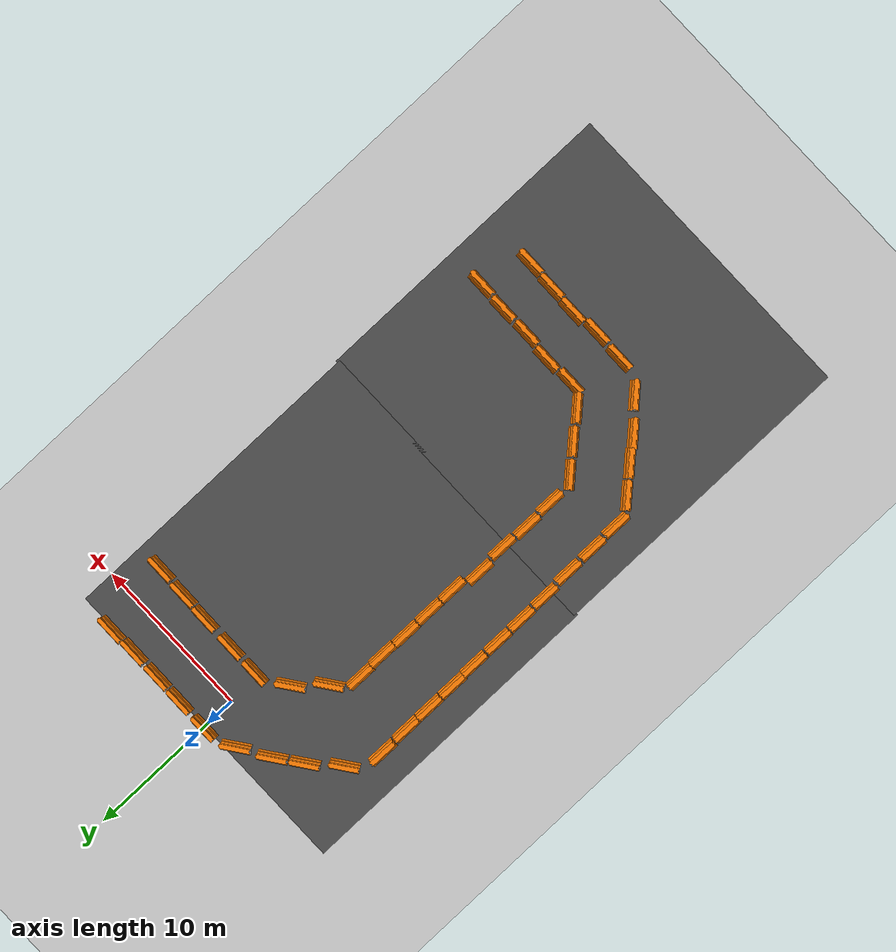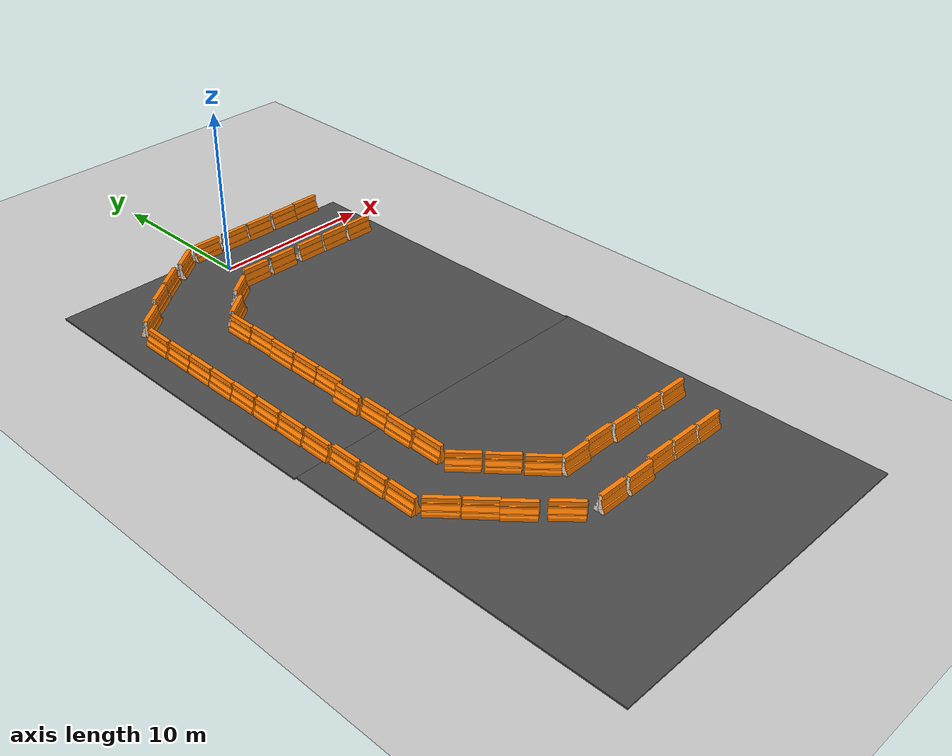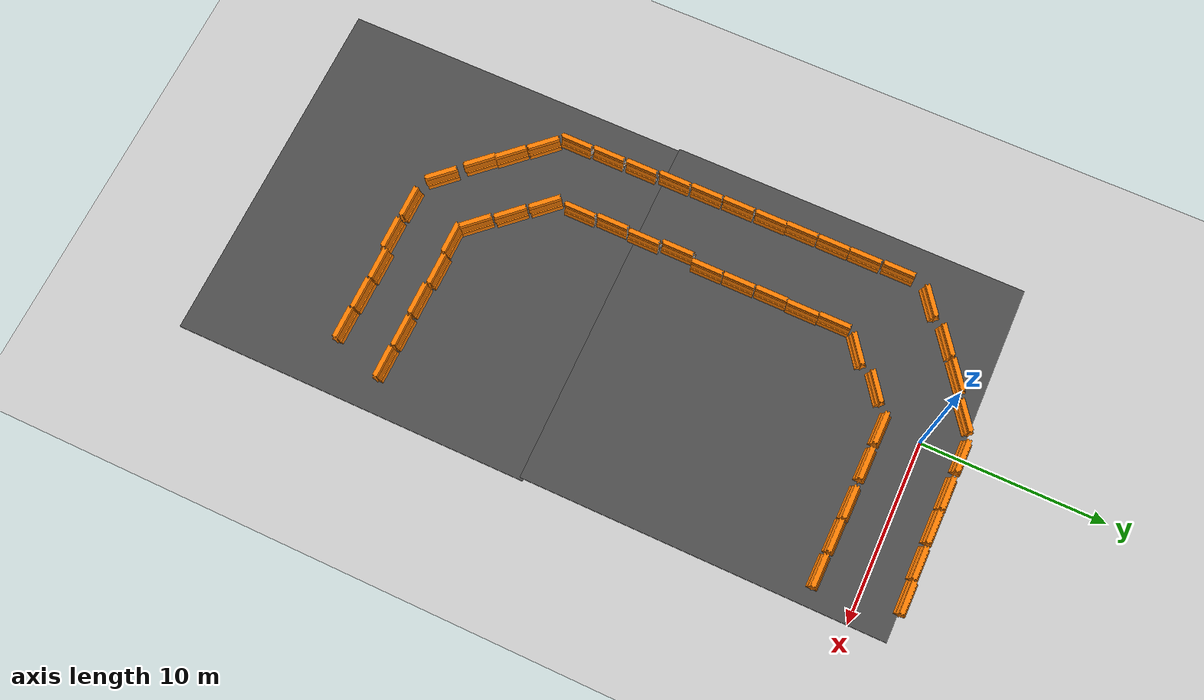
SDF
<sdf version="1.6">
 <world name="default">
  <model name="ground_plane">
   <static>1</static>
   <link name="link">
    <collision name="collision">
     <geometry><plane><normal>0 0 1</normal><size>100 100</size></plane></geometry>
     <surface><friction><ode><mu>100</mu><mu2>50</mu2></ode></friction></surface>
    </collision>
    <visual name="visual">
     <cast_shadows>0</cast_shadows>
     <geometry><plane><normal>0 0 1</normal><size>100 100</size></plane></geometry>
     <material>
      <script><uri>file://media/materials/scripts/gazebo.material</uri><name>Gazebo/Grey</name></script>
     </material>
    </visual>
   </link>
  </model>
  <model name="drc_practice_organge_jersey_barrier_clone">
   <static>1</static>
   <link name="link">
    <visual name="visual">
     <geometry>
      <mesh>
       <uri>model://drc_practice_orange_jersey_barrier/meshes/jersey_barrier.dae</uri>
       <scale>1 1 1</scale>
      </mesh>
     </geometry>
    </visual>
    <collision name="collision">
     <geometry>
      <mesh>
       <uri>model://drc_practice_orange_jersey_barrier/meshes/jersey_barrier.dae</uri>
       <scale>1 1 1</scale>
      </mesh>
     </geometry>
    </collision>
   </link>
   <pose>2.03392 2.10373 0 0 -0 1.57</pose>
  </model>
  <model name="drc_practice_organge_jersey_barrier_clone_0">
   <static>1</static>
   <link name="link">
    <visual name="visual">
     <geometry>
      <mesh>
       <uri>model://drc_practice_orange_jersey_barrier/meshes/jersey_barrier.dae</uri>
       <scale>1 1 1</scale>
      </mesh>
     </geometry>
    </visual>
    <collision name="collision">
     <geometry>
      <mesh>
       <uri>model://drc_practice_orange_jersey_barrier/meshes/jersey_barrier.dae</uri>
       <scale>1 1 1</scale>
      </mesh>
     </geometry>
    </collision>
   </link>
   <pose>3.91145 2.07901 0 0 -0 1.57</pose>
  </model>
  <model name="drc_practice_organge_jersey_barrier_clone_1">
   <static>1</static>
   <link name="link">
    <visual name="visual">
     <geometry>
      <mesh>
       <uri>model://drc_practice_orange_jersey_barrier/meshes/jersey_barrier.dae</uri>
       <scale>1 1 1</scale>
      </mesh>
     </geometry>
    </visual>
    <collision name="collision">
     <geometry>
      <mesh>
       <uri>model://drc_practice_orange_jersey_barrier/meshes/jersey_barrier.dae</uri>
       <scale>1 1 1</scale>
      </mesh>
     </geometry>
    </collision>
   </link>
   <pose>5.86428 2.08634 0 0 -0 1.57</pose>
  </model>
  <model name="drc_practice_organge_jersey_barrier_clone_2">
   <static>1</static>
   <link name="link">
    <visual name="visual">
     <geometry>
      <mesh>
       <uri>model://drc_practice_orange_jersey_barrier/meshes/jersey_barrier.dae</uri>
       <scale>1 1 1</scale>
      </mesh>
     </geometry>
    </visual>
    <collision name="collision">
     <geometry>
      <mesh>
       <uri>model://drc_practice_orange_jersey_barrier/meshes/jersey_barrier.dae</uri>
       <scale>1 1 1</scale>
      </mesh>
     </geometry>
    </collision>
   </link>
   <pose>7.6963 2.14853 0 0 -0 1.57</pose>
  </model>
  <model name="drc_practice_organge_jersey_barrier_clone_7">
   <static>1</static>
   <link name="link">
    <visual name="visual">
     <geometry>
      <mesh>
       <uri>model://drc_practice_orange_jersey_barrier/meshes/jersey_barrier.dae</uri>
       <scale>1 1 1</scale>
      </mesh>
     </geometry>
    </visual>
    <collision name="collision">
     <geometry>
      <mesh>
       <uri>model://drc_practice_orange_jersey_barrier/meshes/jersey_barrier.dae</uri>
       <scale>1 1 1</scale>
      </mesh>
     </geometry>
    </collision>
   </link>
   <pose>0.29978 -2.17018 0 0 -0 1.57</pose>
  </model>
  <model name="drc_practice_organge_jersey_barrier_clone_8">
   <static>1</static>
   <link name="link">
    <visual name="visual">
     <geometry>
      <mesh>
       <uri>model://drc_practice_orange_jersey_barrier/meshes/jersey_barrier.dae</uri>
       <scale>1 1 1</scale>
      </mesh>
     </geometry>
    </visual>
    <collision name="collision">
     <geometry>
      <mesh>
       <uri>model://drc_practice_orange_jersey_barrier/meshes/jersey_barrier.dae</uri>
       <scale>1 1 1</scale>
      </mesh>
     </geometry>
    </collision>
   </link>
   <pose>2.31191 -2.17393 0 0 -0 1.57</pose>
  </model>
  <model name="drc_practice_organge_jersey_barrier_clone_9">
   <static>1</static>
   <link name="link">
    <visual name="visual">
     <geometry>
      <mesh>
       <uri>model://drc_practice_orange_jersey_barrier/meshes/jersey_barrier.dae</uri>
       <scale>1 1 1</scale>
      </mesh>
     </geometry>
    </visual>
    <collision name="collision">
     <geometry>
      <mesh>
       <uri>model://drc_practice_orange_jersey_barrier/meshes/jersey_barrier.dae</uri>
       <scale>1 1 1</scale>
      </mesh>
     </geometry>
    </collision>
   </link>
   <pose>4.47094 -2.1777 0 0 -0 1.57</pose>
  </model>
  <model name="drc_practice_organge_jersey_barrier_clone_10">
   <static>1</static>
   <link name="link">
    <visual name="visual">
     <geometry>
      <mesh>
       <uri>model://drc_practice_orange_jersey_barrier/meshes/jersey_barrier.dae</uri>
       <scale>1 1 1</scale>
      </mesh>
     </geometry>
    </visual>
    <collision name="collision">
     <geometry>
      <mesh>
       <uri>model://drc_practice_orange_jersey_barrier/meshes/jersey_barrier.dae</uri>
       <scale>1 1 1</scale>
      </mesh>
     </geometry>
    </collision>
   </link>
   <pose>6.33529 -2.22935 0 0 -0 1.57</pose>
  </model>
  <model name="drc_practice_organge_jersey_barrier_clone_11">
   <static>1</static>
   <link name="link">
    <visual name="visual">
     <geometry>
      <mesh>
       <uri>model://drc_practice_orange_jersey_barrier/meshes/jersey_barrier.dae</uri>
       <scale>1 1 1</scale>
      </mesh>
     </geometry>
    </visual>
    <collision name="collision">
     <geometry>
      <mesh>
       <uri>model://drc_practice_orange_jersey_barrier/meshes/jersey_barrier.dae</uri>
       <scale>1 1 1</scale>
      </mesh>
     </geometry>
    </collision>
   </link>
   <pose>8.25952 -2.28963 0 0 -0 1.57</pose>
  </model>
  <model name="drc_practice_organge_jersey_barrier_clone_11_clone_8">
   <static>1</static>
   <link name="link">
    <visual name="visual">
     <geometry>
      <mesh>
       <uri>model://drc_practice_orange_jersey_barrier/meshes/jersey_barrier.dae</uri>
       <scale>1 1 1</scale>
      </mesh>
     </geometry>
    </visual>
    <collision name="collision">
     <geometry>
      <mesh>
       <uri>model://drc_practice_orange_jersey_barrier/meshes/jersey_barrier.dae</uri>
       <scale>1 1 1</scale>
      </mesh>
     </geometry>
    </collision>
   </link>
   <pose>7.62658 -26.8354 0 0 -0 1.57</pose>
  </model>
  <model name="drc_practice_organge_jersey_barrier_clone_11_clone_9">
   <static>1</static>
   <link name="link">
    <visual name="visual">
     <geometry>
      <mesh>
       <uri>model://drc_practice_orange_jersey_barrier/meshes/jersey_barrier.dae</uri>
       <scale>1 1 1</scale>
      </mesh>
     </geometry>
    </visual>
    <collision name="collision">
     <geometry>
      <mesh>
       <uri>model://drc_practice_orange_jersey_barrier/meshes/jersey_barrier.dae</uri>
       <scale>1 1 1</scale>
      </mesh>
     </geometry>
    </collision>
   </link>
   <pose>6.61724 -29.7196 0 0 -0 1.57</pose>
  </model>
  <model name="drc_practice_organge_jersey_barrier_clone_11_clone_10">
   <static>1</static>
   <link name="link">
    <visual name="visual">
     <geometry>
      <mesh>
       <uri>model://drc_practice_orange_jersey_barrier/meshes/jersey_barrier.dae</uri>
       <scale>1 1 1</scale>
      </mesh>
     </geometry>
    </visual>
    <collision name="collision">
     <geometry>
      <mesh>
       <uri>model://drc_practice_orange_jersey_barrier/meshes/jersey_barrier.dae</uri>
       <scale>1 1 1</scale>
      </mesh>
     </geometry>
    </collision>
   </link>
   <pose>4.78558 -29.6426 0 0 -0 1.57</pose>
  </model>
  <model name="drc_practice_organge_jersey_barrier_clone_11_clone_11">
   <static>1</static>
   <link name="link">
    <visual name="visual">
     <geometry>
      <mesh>
       <uri>model://drc_practice_orange_jersey_barrier/meshes/jersey_barrier.dae</uri>
       <scale>1 1 1</scale>
      </mesh>
     </geometry>
    </visual>
    <collision name="collision">
     <geometry>
      <mesh>
       <uri>model://drc_practice_orange_jersey_barrier/meshes/jersey_barrier.dae</uri>
       <scale>1 1 1</scale>
      </mesh>
     </geometry>
    </collision>
   </link>
   <pose>5.75195 -26.7656 0 0 -0 1.57</pose>
  </model>
  <model name="drc_practice_organge_jersey_barrier_clone_11_clone_12">
   <static>1</static>
   <link name="link">
    <visual name="visual">
     <geometry>
      <mesh>
       <uri>model://drc_practice_orange_jersey_barrier/meshes/jersey_barrier.dae</uri>
       <scale>1 1 1</scale>
      </mesh>
     </geometry>
    </visual>
    <collision name="collision">
     <geometry>
      <mesh>
       <uri>model://drc_practice_orange_jersey_barrier/meshes/jersey_barrier.dae</uri>
       <scale>1 1 1</scale>
      </mesh>
     </geometry>
    </collision>
   </link>
   <pose>3.82752 -26.7871 0 0 -0 1.57</pose>
  </model>
  <model name="drc_practice_organge_jersey_barrier_clone_11_clone_13">
   <static>1</static>
   <link name="link">
    <visual name="visual">
     <geometry>
      <mesh>
       <uri>model://drc_practice_orange_jersey_barrier/meshes/jersey_barrier.dae</uri>
       <scale>1 1 1</scale>
      </mesh>
     </geometry>
    </visual>
    <collision name="collision">
     <geometry>
      <mesh>
       <uri>model://drc_practice_orange_jersey_barrier/meshes/jersey_barrier.dae</uri>
       <scale>1 1 1</scale>
      </mesh>
     </geometry>
    </collision>
   </link>
   <pose>2.9569 -29.5712 0 0 -0 1.57</pose>
  </model>
  <model name="drc_practice_organge_jersey_barrier_clone_11_clone_14">
   <static>1</static>
   <link name="link">
    <visual name="visual">
     <geometry>
      <mesh>
       <uri>model://drc_practice_orange_jersey_barrier/meshes/jersey_barrier.dae</uri>
       <scale>1 1 1</scale>
      </mesh>
     </geometry>
    </visual>
    <collision name="collision">
     <geometry>
      <mesh>
       <uri>model://drc_practice_orange_jersey_barrier/meshes/jersey_barrier.dae</uri>
       <scale>1 1 1</scale>
      </mesh>
     </geometry>
    </collision>
   </link>
   <pose>1.96328 -26.6291 0 0 -0 1.57</pose>
  </model>
  <model name="drc_practice_organge_jersey_barrier_clone_11_clone_15">
   <static>1</static>
   <link name="link">
    <visual name="visual">
     <geometry>
      <mesh>
       <uri>model://drc_practice_orange_jersey_barrier/meshes/jersey_barrier.dae</uri>
       <scale>1 1 1</scale>
      </mesh>
     </geometry>
    </visual>
    <collision name="collision">
     <geometry>
      <mesh>
       <uri>model://drc_practice_orange_jersey_barrier/meshes/jersey_barrier.dae</uri>
       <scale>1 1 1</scale>
      </mesh>
     </geometry>
    </collision>
   </link>
   <pose>1.11762 -29.7795 0 0 -0 1.57</pose>
  </model>
  <model name="drc_practice_organge_jersey_barrier_clone_11_clone_16">
   <static>1</static>
   <link name="link">
    <visual name="visual">
     <geometry>
      <mesh>
       <uri>model://drc_practice_orange_jersey_barrier/meshes/jersey_barrier.dae</uri>
       <scale>1 1 1</scale>
      </mesh>
     </geometry>
    </visual>
    <collision name="collision">
     <geometry>
      <mesh>
       <uri>model://drc_practice_orange_jersey_barrier/meshes/jersey_barrier.dae</uri>
       <scale>1 1 1</scale>
      </mesh>
     </geometry>
    </collision>
   </link>
   <pose>0.0889 -26.7375 0 0 -0 1.57</pose>
  </model>
  <model name="drc_practice_organge_jersey_barrier_clone_18_clone_0_clone">
   <static>1</static>
   <link name="link">
    <visual name="visual">
     <geometry>
      <mesh>
       <uri>model://drc_practice_orange_jersey_barrier/meshes/jersey_barrier.dae</uri>
       <scale>1 1 1</scale>
      </mesh>
     </geometry>
    </visual>
    <collision name="collision">
     <geometry>
      <mesh>
       <uri>model://drc_practice_orange_jersey_barrier/meshes/jersey_barrier.dae</uri>
       <scale>1 1 1</scale>
      </mesh>
     </geometry>
    </collision>
   </link>
   <pose>-1.29144 -25.9554 0 0 -0 0.75</pose>
  </model>
  <model name="drc_practice_organge_jersey_barrier_clone_18_clone_0_clone_0">
   <static>1</static>
   <link name="link">
    <visual name="visual">
     <geometry>
      <mesh>
       <uri>model://drc_practice_orange_jersey_barrier/meshes/jersey_barrier.dae</uri>
       <scale>1 1 1</scale>
      </mesh>
     </geometry>
    </visual>
    <collision name="collision">
     <geometry>
      <mesh>
       <uri>model://drc_practice_orange_jersey_barrier/meshes/jersey_barrier.dae</uri>
       <scale>1 1 1</scale>
      </mesh>
     </geometry>
    </collision>
   </link>
   <pose>-2.52305 -24.4955 0 0 -0 0.75</pose>
  </model>
  <model name="drc_practice_organge_jersey_barrier_clone_18_clone_0_clone_1">
   <static>1</static>
   <link name="link">
    <visual name="visual">
     <geometry>
      <mesh>
       <uri>model://drc_practice_orange_jersey_barrier/meshes/jersey_barrier.dae</uri>
       <scale>1 1 1</scale>
      </mesh>
     </geometry>
    </visual>
    <collision name="collision">
     <geometry>
      <mesh>
       <uri>model://drc_practice_orange_jersey_barrier/meshes/jersey_barrier.dae</uri>
       <scale>1 1 1</scale>
      </mesh>
     </geometry>
    </collision>
   </link>
   <pose>-3.78716 -23.0551 0 0 -0 0.75</pose>
  </model>
  <model name="drc_practice_organge_jersey_barrier_clone_11_clone_15_clone">
   <static>1</static>
   <link name="link">
    <visual name="visual">
     <geometry>
      <mesh>
       <uri>model://drc_practice_orange_jersey_barrier/meshes/jersey_barrier.dae</uri>
       <scale>1 1 1</scale>
      </mesh>
     </geometry>
    </visual>
    <collision name="collision">
     <geometry>
      <mesh>
       <uri>model://drc_practice_orange_jersey_barrier/meshes/jersey_barrier.dae</uri>
       <scale>1 1 1</scale>
      </mesh>
     </geometry>
    </collision>
   </link>
   <pose>-0.837344 -29.7056 0 0 -0 1.57</pose>
  </model>
  <model name="drc_practice_organge_jersey_barrier_clone_18_clone_0_clone_1_clone">
   <static>1</static>
   <link name="link">
    <visual name="visual">
     <geometry>
      <mesh>
       <uri>model://drc_practice_orange_jersey_barrier/meshes/jersey_barrier.dae</uri>
       <scale>1 1 1</scale>
      </mesh>
     </geometry>
    </visual>
    <collision name="collision">
     <geometry>
      <mesh>
       <uri>model://drc_practice_orange_jersey_barrier/meshes/jersey_barrier.dae</uri>
       <scale>1 1 1</scale>
      </mesh>
     </geometry>
    </collision>
   </link>
   <pose>-2.99658 -28.8663 0 0 -0 0.75</pose>
  </model>
  <model name="drc_practice_organge_jersey_barrier_clone_18_clone_0_clone_1_clone_0">
   <static>1</static>
   <link name="link">
    <visual name="visual">
     <geometry>
      <mesh>
       <uri>model://drc_practice_orange_jersey_barrier/meshes/jersey_barrier.dae</uri>
       <scale>1 1 1</scale>
      </mesh>
     </geometry>
    </visual>
    <collision name="collision">
     <geometry>
      <mesh>
       <uri>model://drc_practice_orange_jersey_barrier/meshes/jersey_barrier.dae</uri>
       <scale>1 1 1</scale>
      </mesh>
     </geometry>
    </collision>
   </link>
   <pose>-4.53841 -27.314 0 0 -0 0.75</pose>
  </model>
  <model name="drc_practice_organge_jersey_barrier_clone_18_clone_0_clone_1_clone_1">
   <static>1</static>
   <link name="link">
    <visual name="visual">
     <geometry>
      <mesh>
       <uri>model://drc_practice_orange_jersey_barrier/meshes/jersey_barrier.dae</uri>
       <scale>1 1 1</scale>
      </mesh>
     </geometry>
    </visual>
    <collision name="collision">
     <geometry>
      <mesh>
       <uri>model://drc_practice_orange_jersey_barrier/meshes/jersey_barrier.dae</uri>
       <scale>1 1 1</scale>
      </mesh>
     </geometry>
    </collision>
   </link>
   <pose>-5.64573 -26.0054 0 0 -0 0.75</pose>
  </model>
  <model name="drc_practice_organge_jersey_barrier_clone_18_clone_0_clone_1_clone_2">
   <static>1</static>
   <link name="link">
    <visual name="visual">
     <geometry>
      <mesh>
       <uri>model://drc_practice_orange_jersey_barrier/meshes/jersey_barrier.dae</uri>
       <scale>1 1 1</scale>
      </mesh>
     </geometry>
    </visual>
    <collision name="collision">
     <geometry>
      <mesh>
       <uri>model://drc_practice_orange_jersey_barrier/meshes/jersey_barrier.dae</uri>
       <scale>1 1 1</scale>
      </mesh>
     </geometry>
    </collision>
   </link>
   <pose>-6.86668 -24.6244 0 0 -0 0.75</pose>
  </model>
  <model name="drc_practice_organge_jersey_barrier_0_clone_18_clone">
   <static>1</static>
   <link name="link">
    <visual name="visual">
     <geometry>
      <mesh>
       <uri>model://drc_practice_orange_jersey_barrier/meshes/jersey_barrier.dae</uri>
       <scale>1 1 1</scale>
      </mesh>
     </geometry>
    </visual>
    <collision name="collision">
     <geometry>
      <mesh>
       <uri>model://drc_practice_orange_jersey_barrier/meshes/jersey_barrier.dae</uri>
       <scale>1 1 1</scale>
      </mesh>
     </geometry>
    </collision>
   </link>
   <pose>-7.68755 -22.9868 0 0 -0 0</pose>
  </model>
  <model name="drc_practice_organge_jersey_barrier_0_clone_18_clone_0">
   <static>1</static>
   <link name="link">
    <visual name="visual">
     <geometry>
      <mesh>
       <uri>model://drc_practice_orange_jersey_barrier/meshes/jersey_barrier.dae</uri>
       <scale>1 1 1</scale>
      </mesh>
     </geometry>
    </visual>
    <collision name="collision">
     <geometry>
      <mesh>
       <uri>model://drc_practice_orange_jersey_barrier/meshes/jersey_barrier.dae</uri>
       <scale>1 1 1</scale>
      </mesh>
     </geometry>
    </collision>
   </link>
   <pose>-7.73917 -21.0907 0 0 -0 0</pose>
  </model>
  <model name="drc_practice_organge_jersey_barrier_0_clone_18_clone_1">
   <static>1</static>
   <link name="link">
    <visual name="visual">
     <geometry>
      <mesh>
       <uri>model://drc_practice_orange_jersey_barrier/meshes/jersey_barrier.dae</uri>
       <scale>1 1 1</scale>
      </mesh>
     </geometry>
    </visual>
    <collision name="collision">
     <geometry>
      <mesh>
       <uri>model://drc_practice_orange_jersey_barrier/meshes/jersey_barrier.dae</uri>
       <scale>1 1 1</scale>
      </mesh>
     </geometry>
    </collision>
   </link>
   <pose>-7.76448 -19.1694 0 0 -0 0</pose>
  </model>
  <model name="drc_practice_organge_jersey_barrier_0_clone_18_clone_2">
   <static>1</static>
   <link name="link">
    <visual name="visual">
     <geometry>
      <mesh>
       <uri>model://drc_practice_orange_jersey_barrier/meshes/jersey_barrier.dae</uri>
       <scale>1 1 1</scale>
      </mesh>
     </geometry>
    </visual>
    <collision name="collision">
     <geometry>
      <mesh>
       <uri>model://drc_practice_orange_jersey_barrier/meshes/jersey_barrier.dae</uri>
       <scale>1 1 1</scale>
      </mesh>
     </geometry>
    </collision>
   </link>
   <pose>-7.86535 -17.2524 0 0 -0 0</pose>
  </model>
  <model name="drc_practice_organge_jersey_barrier_0_clone_18_clone_3">
   <static>1</static>
   <link name="link">
    <visual name="visual">
     <geometry>
      <mesh>
       <uri>model://drc_practice_orange_jersey_barrier/meshes/jersey_barrier.dae</uri>
       <scale>1 1 1</scale>
      </mesh>
     </geometry>
    </visual>
    <collision name="collision">
     <geometry>
      <mesh>
       <uri>model://drc_practice_orange_jersey_barrier/meshes/jersey_barrier.dae</uri>
       <scale>1 1 1</scale>
      </mesh>
     </geometry>
    </collision>
   </link>
   <pose>-7.89797 -15.382 0 0 -0 0</pose>
  </model>
  <model name="drc_practice_organge_jersey_barrier_0_clone_18_clone_4">
   <static>1</static>
   <link name="link">
    <visual name="visual">
     <geometry>
      <mesh>
       <uri>model://drc_practice_orange_jersey_barrier/meshes/jersey_barrier.dae</uri>
       <scale>1 1 1</scale>
      </mesh>
     </geometry>
    </visual>
    <collision name="collision">
     <geometry>
      <mesh>
       <uri>model://drc_practice_orange_jersey_barrier/meshes/jersey_barrier.dae</uri>
       <scale>1 1 1</scale>
      </mesh>
     </geometry>
    </collision>
   </link>
   <pose>-7.92148 -13.5355 0 0 -0 0</pose>
  </model>
  <model name="drc_practice_organge_jersey_barrier_0_clone_18_clone_5">
   <static>1</static>
   <link name="link">
    <visual name="visual">
     <geometry>
      <mesh>
       <uri>model://drc_practice_orange_jersey_barrier/meshes/jersey_barrier.dae</uri>
       <scale>1 1 1</scale>
      </mesh>
     </geometry>
    </visual>
    <collision name="collision">
     <geometry>
      <mesh>
       <uri>model://drc_practice_orange_jersey_barrier/meshes/jersey_barrier.dae</uri>
       <scale>1 1 1</scale>
      </mesh>
     </geometry>
    </collision>
   </link>
   <pose>-7.93321 -11.6611 0 0 -0 0</pose>
  </model>
  <model name="drc_practice_organge_jersey_barrier_0_clone_18_clone_6">
   <static>1</static>
   <link name="link">
    <visual name="visual">
     <geometry>
      <mesh>
       <uri>model://drc_practice_orange_jersey_barrier/meshes/jersey_barrier.dae</uri>
       <scale>1 1 1</scale>
      </mesh>
     </geometry>
    </visual>
    <collision name="collision">
     <geometry>
      <mesh>
       <uri>model://drc_practice_orange_jersey_barrier/meshes/jersey_barrier.dae</uri>
       <scale>1 1 1</scale>
      </mesh>
     </geometry>
    </collision>
   </link>
   <pose>-7.97869 -9.91329 0 0 -0 0</pose>
  </model>
  <model name="drc_practice_organge_jersey_barrier_0_clone_18_clone_7">
   <static>1</static>
   <link name="link">
    <visual name="visual">
     <geometry>
      <mesh>
       <uri>model://drc_practice_orange_jersey_barrier/meshes/jersey_barrier.dae</uri>
       <scale>1 1 1</scale>
      </mesh>
     </geometry>
    </visual>
    <collision name="collision">
     <geometry>
      <mesh>
       <uri>model://drc_practice_orange_jersey_barrier/meshes/jersey_barrier.dae</uri>
       <scale>1 1 1</scale>
      </mesh>
     </geometry>
    </collision>
   </link>
   <pose>-7.97938 -8.08679 0 0 -0 0</pose>
  </model>
  <model name="drc_practice_organge_jersey_barrier_0_clone_18_clone_8">
   <static>1</static>
   <link name="link">
    <visual name="visual">
     <geometry>
      <mesh>
       <uri>model://drc_practice_orange_jersey_barrier/meshes/jersey_barrier.dae</uri>
       <scale>1 1 1</scale>
      </mesh>
     </geometry>
    </visual>
    <collision name="collision">
     <geometry>
      <mesh>
       <uri>model://drc_practice_orange_jersey_barrier/meshes/jersey_barrier.dae</uri>
       <scale>1 1 1</scale>
      </mesh>
     </geometry>
    </collision>
   </link>
   <pose>-7.99104 -6.28264 0 0 -0 0</pose>
  </model>
  <model name="drc_practice_organge_jersey_barrier_0_clone_18_clone_9">
   <static>1</static>
   <link name="link">
    <visual name="visual">
     <geometry>
      <mesh>
       <uri>model://drc_practice_orange_jersey_barrier/meshes/jersey_barrier.dae</uri>
       <scale>1 1 1</scale>
      </mesh>
     </geometry>
    </visual>
    <collision name="collision">
     <geometry>
      <mesh>
       <uri>model://drc_practice_orange_jersey_barrier/meshes/jersey_barrier.dae</uri>
       <scale>1 1 1</scale>
      </mesh>
     </geometry>
    </collision>
   </link>
   <pose>-8.03396 -4.39428 0 0 -0 0</pose>
  </model>
  <model name="drc_practice_organge_jersey_barrier_0_clone_18_clone_10">
   <static>1</static>
   <link name="link">
    <visual name="visual">
     <geometry>
      <mesh>
       <uri>model://drc_practice_orange_jersey_barrier/meshes/jersey_barrier.dae</uri>
       <scale>1 1 1</scale>
      </mesh>
     </geometry>
    </visual>
    <collision name="collision">
     <geometry>
      <mesh>
       <uri>model://drc_practice_orange_jersey_barrier/meshes/jersey_barrier.dae</uri>
       <scale>1 1 1</scale>
      </mesh>
     </geometry>
    </collision>
   </link>
   <pose>-4.1494 -21.132 0 0 -0 0</pose>
  </model>
  <model name="drc_practice_organge_jersey_barrier_0_clone_18_clone_11">
   <static>1</static>
   <link name="link">
    <visual name="visual">
     <geometry>
      <mesh>
       <uri>model://drc_practice_orange_jersey_barrier/meshes/jersey_barrier.dae</uri>
       <scale>1 1 1</scale>
      </mesh>
     </geometry>
    </visual>
    <collision name="collision">
     <geometry>
      <mesh>
       <uri>model://drc_practice_orange_jersey_barrier/meshes/jersey_barrier.dae</uri>
       <scale>1 1 1</scale>
      </mesh>
     </geometry>
    </collision>
   </link>
   <pose>-4.23575 -19.2558 0 0 -0 0</pose>
  </model>
  <model name="drc_practice_organge_jersey_barrier_0_clone_18_clone_12">
   <static>1</static>
   <link name="link">
    <visual name="visual">
     <geometry>
      <mesh>
       <uri>model://drc_practice_orange_jersey_barrier/meshes/jersey_barrier.dae</uri>
       <scale>1 1 1</scale>
      </mesh>
     </geometry>
    </visual>
    <collision name="collision">
     <geometry>
      <mesh>
       <uri>model://drc_practice_orange_jersey_barrier/meshes/jersey_barrier.dae</uri>
       <scale>1 1 1</scale>
      </mesh>
     </geometry>
    </collision>
   </link>
   <pose>-4.15171 -17.389 0 0 -0 0</pose>
  </model>
  <model name="drc_practice_organge_jersey_barrier_0_clone_18_clone_13">
   <static>1</static>
   <link name="link">
    <visual name="visual">
     <geometry>
      <mesh>
       <uri>model://drc_practice_orange_jersey_barrier/meshes/jersey_barrier.dae</uri>
       <scale>1 1 1</scale>
      </mesh>
     </geometry>
    </visual>
    <collision name="collision">
     <geometry>
      <mesh>
       <uri>model://drc_practice_orange_jersey_barrier/meshes/jersey_barrier.dae</uri>
       <scale>1 1 1</scale>
      </mesh>
     </geometry>
    </collision>
   </link>
   <pose>-4.30606 -15.4873 0 0 -0 0</pose>
  </model>
  <model name="drc_practice_organge_jersey_barrier_0_clone_18_clone_14">
   <static>1</static>
   <link name="link">
    <visual name="visual">
     <geometry>
      <mesh>
       <uri>model://drc_practice_orange_jersey_barrier/meshes/jersey_barrier.dae</uri>
       <scale>1 1 1</scale>
      </mesh>
     </geometry>
    </visual>
    <collision name="collision">
     <geometry>
      <mesh>
       <uri>model://drc_practice_orange_jersey_barrier/meshes/jersey_barrier.dae</uri>
       <scale>1 1 1</scale>
      </mesh>
     </geometry>
    </collision>
   </link>
   <pose>-3.97429 -13.6585 0 0 -0 0</pose>
  </model>
  <model name="drc_practice_organge_jersey_barrier_0_clone_18_clone_15">
   <static>1</static>
   <link name="link">
    <visual name="visual">
     <geometry>
      <mesh>
       <uri>model://drc_practice_orange_jersey_barrier/meshes/jersey_barrier.dae</uri>
       <scale>1 1 1</scale>
      </mesh>
     </geometry>
    </visual>
    <collision name="collision">
     <geometry>
      <mesh>
       <uri>model://drc_practice_orange_jersey_barrier/meshes/jersey_barrier.dae</uri>
       <scale>1 1 1</scale>
      </mesh>
     </geometry>
    </collision>
   </link>
   <pose>-3.97627 -11.8352 0 0 -0 0</pose>
  </model>
  <model name="drc_practice_organge_jersey_barrier_0_clone_18_clone_16">
   <static>1</static>
   <link name="link">
    <visual name="visual">
     <geometry>
      <mesh>
       <uri>model://drc_practice_orange_jersey_barrier/meshes/jersey_barrier.dae</uri>
       <scale>1 1 1</scale>
      </mesh>
     </geometry>
    </visual>
    <collision name="collision">
     <geometry>
      <mesh>
       <uri>model://drc_practice_orange_jersey_barrier/meshes/jersey_barrier.dae</uri>
       <scale>1 1 1</scale>
      </mesh>
     </geometry>
    </collision>
   </link>
   <pose>-4 -10 0 0 -0 0</pose>
  </model>
  <model name="drc_practice_organge_jersey_barrier_0_clone_18_clone_17">
   <static>1</static>
   <link name="link">
    <visual name="visual">
     <geometry>
      <mesh>
       <uri>model://drc_practice_orange_jersey_barrier/meshes/jersey_barrier.dae</uri>
       <scale>1 1 1</scale>
      </mesh>
     </geometry>
    </visual>
    <collision name="collision">
     <geometry>
      <mesh>
       <uri>model://drc_practice_orange_jersey_barrier/meshes/jersey_barrier.dae</uri>
       <scale>1 1 1</scale>
      </mesh>
     </geometry>
    </collision>
   </link>
   <pose>-3.94605 -8.1998 0 0 -0 0</pose>
  </model>
  <model name="drc_practice_organge_jersey_barrier_0_clone_18_clone_18">
   <static>1</static>
   <link name="link">
    <visual name="visual">
     <geometry>
      <mesh>
       <uri>model://drc_practice_orange_jersey_barrier/meshes/jersey_barrier.dae</uri>
       <scale>1 1 1</scale>
      </mesh>
     </geometry>
    </visual>
    <collision name="collision">
     <geometry>
      <mesh>
       <uri>model://drc_practice_orange_jersey_barrier/meshes/jersey_barrier.dae</uri>
       <scale>1 1 1</scale>
      </mesh>
     </geometry>
    </collision>
   </link>
   <pose>-4 -6.42063 0 0 -0 0</pose>
  </model>
  <model name="drc_practice_organge_jersey_barrier_clone_18_clone_clone_clone_2_clone">
   <static>1</static>
   <link name="link">
    <visual name="visual">
     <geometry>
      <mesh>
       <uri>model://drc_practice_orange_jersey_barrier/meshes/jersey_barrier.dae</uri>
       <scale>1 1 1</scale>
      </mesh>
     </geometry>
    </visual>
    <collision name="collision">
     <geometry>
      <mesh>
       <uri>model://drc_practice_orange_jersey_barrier/meshes/jersey_barrier.dae</uri>
       <scale>1 1 1</scale>
      </mesh>
     </geometry>
    </collision>
   </link>
   <pose>-3.12074 -4.80608 0 0 -0 2.2</pose>
  </model>
  <model name="drc_practice_organge_jersey_barrier_clone_18_clone_clone_clone_2_clone_0">
   <static>1</static>
   <link name="link">
    <visual name="visual">
     <geometry>
      <mesh>
       <uri>model://drc_practice_orange_jersey_barrier/meshes/jersey_barrier.dae</uri>
       <scale>1 1 1</scale>
      </mesh>
     </geometry>
    </visual>
    <collision name="collision">
     <geometry>
      <mesh>
       <uri>model://drc_practice_orange_jersey_barrier/meshes/jersey_barrier.dae</uri>
       <scale>1 1 1</scale>
      </mesh>
     </geometry>
    </collision>
   </link>
   <pose>-1.64581 -3.17876 0 0 -0 2.2</pose>
  </model>
  <model name="drc_practice_organge_jersey_barrier_clone_18_clone_clone_clone_2_clone_1">
   <static>1</static>
   <link name="link">
    <visual name="visual">
     <geometry>
      <mesh>
       <uri>model://drc_practice_orange_jersey_barrier/meshes/jersey_barrier.dae</uri>
       <scale>1 1 1</scale>
      </mesh>
     </geometry>
    </visual>
    <collision name="collision">
     <geometry>
      <mesh>
       <uri>model://drc_practice_orange_jersey_barrier/meshes/jersey_barrier.dae</uri>
       <scale>1 1 1</scale>
      </mesh>
     </geometry>
    </collision>
   </link>
   <pose>-2.07692 1.52455 0 0 -0 2.2</pose>
  </model>
  <model name="drc_practice_organge_jersey_barrier_clone_18_clone_clone_clone_2_clone_2">
   <static>1</static>
   <link name="link">
    <visual name="visual">
     <geometry>
      <mesh>
       <uri>model://drc_practice_orange_jersey_barrier/meshes/jersey_barrier.dae</uri>
       <scale>1 1 1</scale>
      </mesh>
     </geometry>
    </visual>
    <collision name="collision">
     <geometry>
      <mesh>
       <uri>model://drc_practice_orange_jersey_barrier/meshes/jersey_barrier.dae</uri>
       <scale>1 1 1</scale>
      </mesh>
     </geometry>
    </collision>
   </link>
   <pose>-3.93722 0.396841 0 0 -0 2.2</pose>
  </model>
  <model name="drc_practice_organge_jersey_barrier_clone_18_clone_clone_clone_2_clone_3">
   <static>1</static>
   <link name="link">
    <visual name="visual">
     <geometry>
      <mesh>
       <uri>model://drc_practice_orange_jersey_barrier/meshes/jersey_barrier.dae</uri>
       <scale>1 1 1</scale>
      </mesh>
     </geometry>
    </visual>
    <collision name="collision">
     <geometry>
      <mesh>
       <uri>model://drc_practice_orange_jersey_barrier/meshes/jersey_barrier.dae</uri>
       <scale>1 1 1</scale>
      </mesh>
     </geometry>
    </collision>
   </link>
   <pose>-5.46312 -0.727159 0 0 -0 2.2</pose>
  </model>
  <model name="drc_practice_organge_jersey_barrier_clone_18_clone_clone_clone_2_clone_4">
   <static>1</static>
   <link name="link">
    <visual name="visual">
     <geometry>
      <mesh>
       <uri>model://drc_practice_orange_jersey_barrier/meshes/jersey_barrier.dae</uri>
       <scale>1 1 1</scale>
      </mesh>
     </geometry>
    </visual>
    <collision name="collision">
     <geometry>
      <mesh>
       <uri>model://drc_practice_orange_jersey_barrier/meshes/jersey_barrier.dae</uri>
       <scale>1 1 1</scale>
      </mesh>
     </geometry>
    </collision>
   </link>
   <pose>-7.1182 -2.27366 0 0 -0 2.2</pose>
  </model>
  <model name="asphalt_plane">
   <static>1</static>
   <link name="link">
    <collision name="collision"><geometry><box><size>20 20 0.1</size></box></geometry></collision>
    <visual name="visual">
     <cast_shadows>0</cast_shadows>
     <geometry><box><size>20 20 0.1</size></box></geometry>
     <material>
      <script>
       <uri>model://asphalt_plane/materials/scripts</uri>
       <uri>model://asphalt_plane/materials/textures</uri>
       <name>vrc/asphalt</name>
      </script>
     </material>
    </visual>
   </link>
   <pose>0.043261 -7.92267 0 0 -0 0</pose>
  </model>
  <model name="asphalt_plane_clone_1">
   <static>1</static>
   <link name="link">
    <collision name="collision"><geometry><box><size>20 20 0.1</size></box></geometry></collision>
    <visual name="visual">
     <cast_shadows>0</cast_shadows>
     <geometry><box><size>20 20 0.1</size></box></geometry>
     <material>
      <script>
       <uri>model://asphalt_plane/materials/scripts</uri>
       <uri>model://asphalt_plane/materials/textures</uri>
       <name>vrc/asphalt</name>
      </script>
     </material>
    </visual>
   </link>
   <pose>0.165578 -27.7197 0 0 -0 0</pose>
  </model>
  <model name="drc_practice_organge_jersey_barrier_clone_clone">
   <static>1</static>
   <link name="link">
    <visual name="visual">
     <geometry>
      <mesh>
       <uri>model://drc_practice_orange_jersey_barrier/meshes/jersey_barrier.dae</uri>
       <scale>1 1 1</scale>
      </mesh>
     </geometry>
    </visual>
    <collision name="collision">
     <geometry>
      <mesh>
       <uri>model://drc_practice_orange_jersey_barrier/meshes/jersey_barrier.dae</uri>
       <scale>1 1 1</scale>
      </mesh>
     </geometry>
    </collision>
   </link>
   <pose>-0.031223 2.1273 0 0 -0 1.57</pose>
  </model>
 </world>
</sdf>
